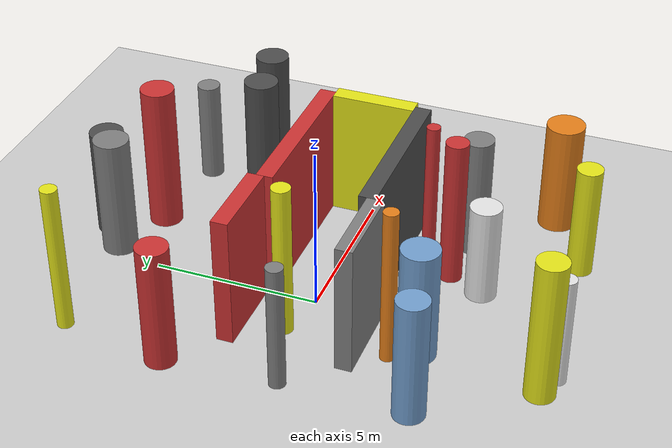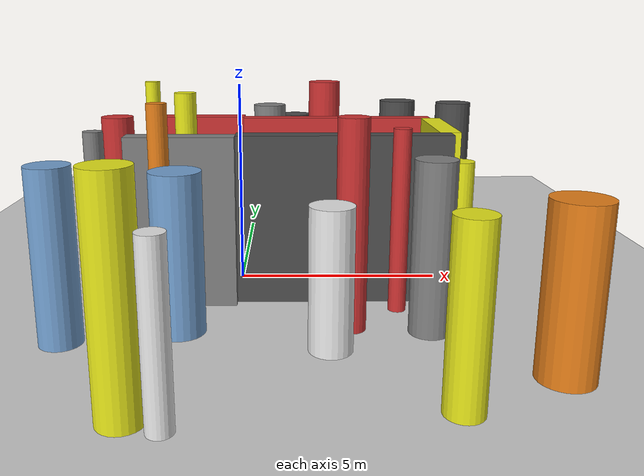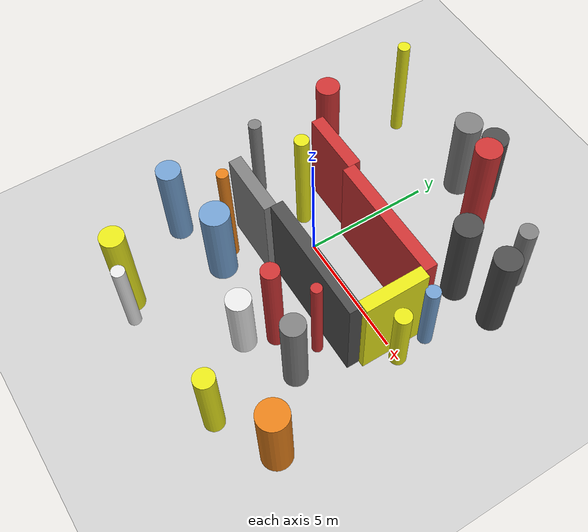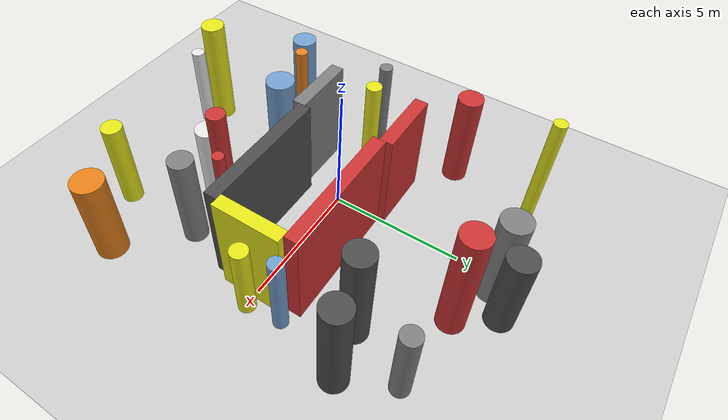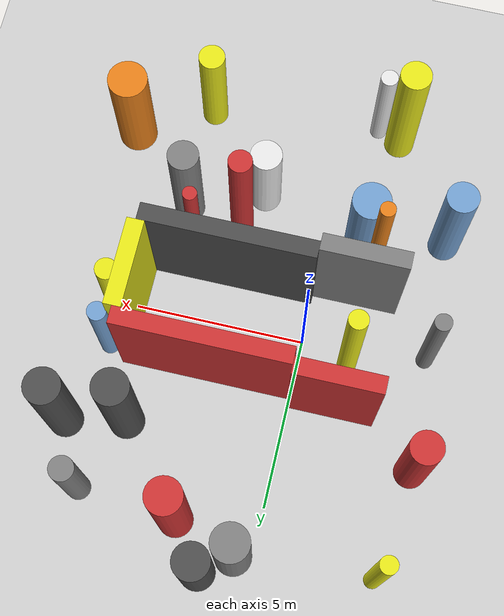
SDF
<?xml version='1.0'?>
<sdf version='1.6'>
  <world name='routeA_rl_v1__dense_recovery__rl_test__cul_de_sac_trap__000115'>
    <!-- Sun light -->
    <light name='sun' type='directional'>
      <cast_shadows>1</cast_shadows>
      <pose>0 0 10 0 0 0</pose>
      <diffuse>0.8 0.8 0.8 1</diffuse>
      <specular>0.2 0.2 0.2 1</specular>
      <attenuation>
        <range>1000</range>
        <constant>0.9</constant>
        <linear>0.01</linear>
        <quadratic>0.001</quadratic>
      </attenuation>
      <direction>-0.5 0.1 -0.9</direction>
    </light>

    <!-- Ground plane -->
    <model name='ground_plane'>
      <static>1</static>
      <link name='link'>
        <collision name='collision'>
          <geometry>
            <plane>
              <normal>0 0 1</normal>
              <size>100 100</size>
            </plane>
          </geometry>
          <surface>
            <contact>
              <collide_bitmask>65535</collide_bitmask>
              <ode/>
            </contact>
            <friction>
              <ode>
                <mu>100</mu>
                <mu2>50</mu2>
              </ode>
              <torsional><ode/></torsional>
            </friction>
            <bounce/>
          </surface>
          <max_contacts>10</max_contacts>
        </collision>
        <visual name='visual'>
          <cast_shadows>0</cast_shadows>
          <geometry>
            <plane>
              <normal>0 0 1</normal>
              <size>100 100</size>
            </plane>
          </geometry>
          <material>
            <script>
              <uri>file://media/materials/scripts/gazebo.material</uri>
              <n>Gazebo/Grey</n>
            </script>
          </material>
        </visual>
      </link>
    </model>

    <!-- Environment -->
    <magnetic_field>6e-06 2.3e-05 -4.2e-05</magnetic_field>
    <atmosphere type='adiabatic'/>
    <physics name='default_physics' default='0' type='ode'>
      <gravity>0 0 -9.8</gravity>
      <max_step_size>0.004</max_step_size>
      <real_time_factor>1</real_time_factor>
      <real_time_update_rate>250</real_time_update_rate>
    </physics>
    <scene>
      <ambient>0.4 0.4 0.4 1</ambient>
      <background>0.7 0.7 0.7 1</background>
      <shadows>1</shadows>
    </scene>
    <wind/>
    <spherical_coordinates>
      <surface_model>EARTH_WGS84</surface_model>
      <latitude_deg>0</latitude_deg>
      <longitude_deg>0</longitude_deg>
      <elevation>0</elevation>
      <heading_deg>0</heading_deg>
    </spherical_coordinates>

    <!-- ============ OBSTACLES (28) ============ -->
    <model name='trap_side_l'>
      <static>1</static>
      <link name='link'>
        <visual name='visual'>
          <geometry>
            <box>
              <size>5.0000 0.5000 4.0000</size>
            </box>
          </geometry>
          <material>
            <script>
              <n>Gazebo/DarkGrey</n>
              <uri>file://media/materials/scripts/gazebo.material</uri>
            </script>
            <ambient>0.3 0.3 0.3 1</ambient>
          </material>
        </visual>
        <collision name='collision'>
          <geometry>
            <box>
              <size>5.0000 0.5000 4.0000</size>
            </box>
          </geometry>
          <max_contacts>10</max_contacts>
          <surface>
            <contact><ode/></contact>
            <bounce/>
            <friction>
              <ode><mu>1</mu><mu2>1</mu2></ode>
              <torsional><ode/></torsional>
            </friction>
          </surface>
        </collision>
      </link>
      <pose>2.5000 -1.5000 2.0000 0 0 0.0000</pose>
    </model>

    <model name='trap_side_r'>
      <static>1</static>
      <link name='link'>
        <visual name='visual'>
          <geometry>
            <box>
              <size>5.0000 0.5000 4.0000</size>
            </box>
          </geometry>
          <material>
            <script>
              <n>Gazebo/Red</n>
              <uri>file://media/materials/scripts/gazebo.material</uri>
            </script>
            <ambient>0.8 0.2 0.2 1</ambient>
          </material>
        </visual>
        <collision name='collision'>
          <geometry>
            <box>
              <size>5.0000 0.5000 4.0000</size>
            </box>
          </geometry>
          <max_contacts>10</max_contacts>
          <surface>
            <contact><ode/></contact>
            <bounce/>
            <friction>
              <ode><mu>1</mu><mu2>1</mu2></ode>
              <torsional><ode/></torsional>
            </friction>
          </surface>
        </collision>
      </link>
      <pose>2.5000 1.5000 2.0000 0 0 0.0000</pose>
    </model>

    <model name='trap_back'>
      <static>1</static>
      <link name='link'>
        <visual name='visual'>
          <geometry>
            <box>
              <size>0.5000 2.5000 4.0000</size>
            </box>
          </geometry>
          <material>
            <script>
              <n>Gazebo/Yellow</n>
              <uri>file://media/materials/scripts/gazebo.material</uri>
            </script>
            <ambient>0.9 0.9 0.1 1</ambient>
          </material>
        </visual>
        <collision name='collision'>
          <geometry>
            <box>
              <size>0.5000 2.5000 4.0000</size>
            </box>
          </geometry>
          <max_contacts>10</max_contacts>
          <surface>
            <contact><ode/></contact>
            <bounce/>
            <friction>
              <ode><mu>1</mu><mu2>1</mu2></ode>
              <torsional><ode/></torsional>
            </friction>
          </surface>
        </collision>
      </link>
      <pose>5.0000 0.0000 2.0000 0 0 0.0000</pose>
    </model>

    <model name='trap_funnel_l'>
      <static>1</static>
      <link name='link'>
        <visual name='visual'>
          <geometry>
            <box>
              <size>2.5000 0.5000 4.0000</size>
            </box>
          </geometry>
          <material>
            <script>
              <n>Gazebo/Grey</n>
              <uri>file://media/materials/scripts/gazebo.material</uri>
            </script>
            <ambient>0.5 0.5 0.5 1</ambient>
          </material>
        </visual>
        <collision name='collision'>
          <geometry>
            <box>
              <size>2.5000 0.5000 4.0000</size>
            </box>
          </geometry>
          <max_contacts>10</max_contacts>
          <surface>
            <contact><ode/></contact>
            <bounce/>
            <friction>
              <ode><mu>1</mu><mu2>1</mu2></ode>
              <torsional><ode/></torsional>
            </friction>
          </surface>
        </collision>
      </link>
      <pose>-1.2500 -1.7500 2.0000 0 0 0.0000</pose>
    </model>

    <model name='trap_funnel_r'>
      <static>1</static>
      <link name='link'>
        <visual name='visual'>
          <geometry>
            <box>
              <size>2.5000 0.5000 4.0000</size>
            </box>
          </geometry>
          <material>
            <script>
              <n>Gazebo/Red</n>
              <uri>file://media/materials/scripts/gazebo.material</uri>
            </script>
            <ambient>0.8 0.2 0.2 1</ambient>
          </material>
        </visual>
        <collision name='collision'>
          <geometry>
            <box>
              <size>2.5000 0.5000 4.0000</size>
            </box>
          </geometry>
          <max_contacts>10</max_contacts>
          <surface>
            <contact><ode/></contact>
            <bounce/>
            <friction>
              <ode><mu>1</mu><mu2>1</mu2></ode>
              <torsional><ode/></torsional>
            </friction>
          </surface>
        </collision>
      </link>
      <pose>-1.2500 1.7500 2.0000 0 0 0.0000</pose>
    </model>

    <model name='trap_scatter_0'>
      <static>1</static>
      <link name='link'>
        <visual name='visual'>
          <geometry>
            <cylinder>
              <radius>0.3840</radius>
              <length>3.5343</length>
            </cylinder>
          </geometry>
          <material>
            <script>
              <n>Gazebo/Yellow</n>
              <uri>file://media/materials/scripts/gazebo.material</uri>
            </script>
            <ambient>0.9 0.9 0.1 1</ambient>
          </material>
        </visual>
        <collision name='collision'>
          <geometry>
            <cylinder>
              <radius>0.3840</radius>
              <length>3.5343</length>
            </cylinder>
          </geometry>
          <max_contacts>10</max_contacts>
          <surface>
            <contact><ode/></contact>
            <bounce/>
            <friction>
              <ode><mu>1</mu><mu2>1</mu2></ode>
              <torsional><ode/></torsional>
            </friction>
          </surface>
        </collision>
      </link>
      <pose>4.2374 -6.7184 1.7671 0 0 0.0000</pose>
    </model>

    <model name='trap_scatter_1'>
      <static>1</static>
      <link name='link'>
        <visual name='visual'>
          <geometry>
            <cylinder>
              <radius>0.4475</radius>
              <length>4.3854</length>
            </cylinder>
          </geometry>
          <material>
            <script>
              <n>Gazebo/Yellow</n>
              <uri>file://media/materials/scripts/gazebo.material</uri>
            </script>
            <ambient>0.9 0.9 0.1 1</ambient>
          </material>
        </visual>
        <collision name='collision'>
          <geometry>
            <cylinder>
              <radius>0.4475</radius>
              <length>4.3854</length>
            </cylinder>
          </geometry>
          <max_contacts>10</max_contacts>
          <surface>
            <contact><ode/></contact>
            <bounce/>
            <friction>
              <ode><mu>1</mu><mu2>1</mu2></ode>
              <torsional><ode/></torsional>
            </friction>
          </surface>
        </collision>
      </link>
      <pose>-1.5602 -6.9732 2.1927 0 0 0.0000</pose>
    </model>

    <model name='trap_scatter_2'>
      <static>1</static>
      <link name='link'>
        <visual name='visual'>
          <geometry>
            <cylinder>
              <radius>0.2784</radius>
              <length>4.7645</length>
            </cylinder>
          </geometry>
          <material>
            <script>
              <n>Gazebo/Yellow</n>
              <uri>file://media/materials/scripts/gazebo.material</uri>
            </script>
            <ambient>0.9 0.9 0.1 1</ambient>
          </material>
        </visual>
        <collision name='collision'>
          <geometry>
            <cylinder>
              <radius>0.2784</radius>
              <length>4.7645</length>
            </cylinder>
          </geometry>
          <max_contacts>10</max_contacts>
          <surface>
            <contact><ode/></contact>
            <bounce/>
            <friction>
              <ode><mu>1</mu><mu2>1</mu2></ode>
              <torsional><ode/></torsional>
            </friction>
          </surface>
        </collision>
      </link>
      <pose>-1.4131 0.4152 2.3823 0 0 0.0000</pose>
    </model>

    <model name='trap_scatter_4'>
      <static>1</static>
      <link name='link'>
        <visual name='visual'>
          <geometry>
            <cylinder>
              <radius>0.3502</radius>
              <length>3.2169</length>
            </cylinder>
          </geometry>
          <material>
            <script>
              <n>Gazebo/Grey</n>
              <uri>file://media/materials/scripts/gazebo.material</uri>
            </script>
            <ambient>0.5 0.5 0.5 1</ambient>
          </material>
        </visual>
        <collision name='collision'>
          <geometry>
            <cylinder>
              <radius>0.3502</radius>
              <length>3.2169</length>
            </cylinder>
          </geometry>
          <max_contacts>10</max_contacts>
          <surface>
            <contact><ode/></contact>
            <bounce/>
            <friction>
              <ode><mu>1</mu><mu2>1</mu2></ode>
              <torsional><ode/></torsional>
            </friction>
          </surface>
        </collision>
      </link>
      <pose>5.2697 5.6140 1.6085 0 0 0.0000</pose>
    </model>

    <model name='trap_scatter_5'>
      <static>1</static>
      <link name='link'>
        <visual name='visual'>
          <geometry>
            <cylinder>
              <radius>0.2538</radius>
              <length>3.4145</length>
            </cylinder>
          </geometry>
          <material>
            <script>
              <n>Gazebo/White</n>
              <uri>file://media/materials/scripts/gazebo.material</uri>
            </script>
            <ambient>0.9 0.9 0.9 1</ambient>
          </material>
        </visual>
        <collision name='collision'>
          <geometry>
            <cylinder>
              <radius>0.2538</radius>
              <length>3.4145</length>
            </cylinder>
          </geometry>
          <max_contacts>10</max_contacts>
          <surface>
            <contact><ode/></contact>
            <bounce/>
            <friction>
              <ode><mu>1</mu><mu2>1</mu2></ode>
              <torsional><ode/></torsional>
            </friction>
          </surface>
        </collision>
      </link>
      <pose>-0.8533 -7.2766 1.7072 0 0 0.0000</pose>
    </model>

    <model name='trap_scatter_6'>
      <static>1</static>
      <link name='link'>
        <visual name='visual'>
          <geometry>
            <cylinder>
              <radius>0.5788</radius>
              <length>3.4892</length>
            </cylinder>
          </geometry>
          <material>
            <script>
              <n>Gazebo/Orange</n>
              <uri>file://media/materials/scripts/gazebo.material</uri>
            </script>
            <ambient>0.9 0.5 0.1 1</ambient>
          </material>
        </visual>
        <collision name='collision'>
          <geometry>
            <cylinder>
              <radius>0.5788</radius>
              <length>3.4892</length>
            </cylinder>
          </geometry>
          <max_contacts>10</max_contacts>
          <surface>
            <contact><ode/></contact>
            <bounce/>
            <friction>
              <ode><mu>1</mu><mu2>1</mu2></ode>
              <torsional><ode/></torsional>
            </friction>
          </surface>
        </collision>
      </link>
      <pose>6.4206 -5.5102 1.7446 0 0 0.0000</pose>
    </model>

    <model name='trap_scatter_7'>
      <static>1</static>
      <link name='link'>
        <visual name='visual'>
          <geometry>
            <cylinder>
              <radius>0.4647</radius>
              <length>3.8124</length>
            </cylinder>
          </geometry>
          <material>
            <script>
              <n>Gazebo/Red</n>
              <uri>file://media/materials/scripts/gazebo.material</uri>
            </script>
            <ambient>0.8 0.2 0.2 1</ambient>
          </material>
        </visual>
        <collision name='collision'>
          <geometry>
            <cylinder>
              <radius>0.4647</radius>
              <length>3.8124</length>
            </cylinder>
          </geometry>
          <max_contacts>10</max_contacts>
          <surface>
            <contact><ode/></contact>
            <bounce/>
            <friction>
              <ode><mu>1</mu><mu2>1</mu2></ode>
              <torsional><ode/></torsional>
            </friction>
          </surface>
        </collision>
      </link>
      <pose>-3.8247 3.0679 1.9062 0 0 0.0000</pose>
    </model>

    <model name='trap_scatter_8'>
      <static>1</static>
      <link name='link'>
        <visual name='visual'>
          <geometry>
            <cylinder>
              <radius>0.2472</radius>
              <length>3.8847</length>
            </cylinder>
          </geometry>
          <material>
            <script>
              <n>Gazebo/Grey</n>
              <uri>file://media/materials/scripts/gazebo.material</uri>
            </script>
            <ambient>0.5 0.5 0.5 1</ambient>
          </material>
        </visual>
        <collision name='collision'>
          <geometry>
            <cylinder>
              <radius>0.2472</radius>
              <length>3.8847</length>
            </cylinder>
          </geometry>
          <max_contacts>10</max_contacts>
          <surface>
            <contact><ode/></contact>
            <bounce/>
            <friction>
              <ode><mu>1</mu><mu2>1</mu2></ode>
              <torsional><ode/></torsional>
            </friction>
          </surface>
        </collision>
      </link>
      <pose>-3.6211 -0.2907 1.9423 0 0 0.0000</pose>
    </model>

    <model name='trap_scatter_9'>
      <static>1</static>
      <link name='link'>
        <visual name='visual'>
          <geometry>
            <cylinder>
              <radius>0.2431</radius>
              <length>4.5736</length>
            </cylinder>
          </geometry>
          <material>
            <script>
              <n>Gazebo/Yellow</n>
              <uri>file://media/materials/scripts/gazebo.material</uri>
            </script>
            <ambient>0.9 0.9 0.1 1</ambient>
          </material>
        </visual>
        <collision name='collision'>
          <geometry>
            <cylinder>
              <radius>0.2431</radius>
              <length>4.5736</length>
            </cylinder>
          </geometry>
          <max_contacts>10</max_contacts>
          <surface>
            <contact><ode/></contact>
            <bounce/>
            <friction>
              <ode><mu>1</mu><mu2>1</mu2></ode>
              <torsional><ode/></torsional>
            </friction>
          </surface>
        </collision>
      </link>
      <pose>-3.3768 6.2601 2.2868 0 0 0.0000</pose>
    </model>

    <model name='trap_scatter_10'>
      <static>1</static>
      <link name='link'>
        <visual name='visual'>
          <geometry>
            <cylinder>
              <radius>0.2760</radius>
              <length>3.3123</length>
            </cylinder>
          </geometry>
          <material>
            <script>
              <n>Gazebo/Blue</n>
              <uri>file://media/materials/scripts/gazebo.material</uri>
            </script>
            <ambient>0.447 0.624 0.812 1</ambient>
          </material>
        </visual>
        <collision name='collision'>
          <geometry>
            <cylinder>
              <radius>0.2760</radius>
              <length>3.3123</length>
            </cylinder>
          </geometry>
          <max_contacts>10</max_contacts>
          <surface>
            <contact><ode/></contact>
            <bounce/>
            <friction>
              <ode><mu>1</mu><mu2>1</mu2></ode>
              <torsional><ode/></torsional>
            </friction>
          </surface>
        </collision>
      </link>
      <pose>5.4866 1.3100 1.6561 0 0 0.0000</pose>
    </model>

    <model name='trap_scatter_11'>
      <static>1</static>
      <link name='link'>
        <visual name='visual'>
          <geometry>
            <cylinder>
              <radius>0.4509</radius>
              <length>3.7923</length>
            </cylinder>
          </geometry>
          <material>
            <script>
              <n>Gazebo/Grey</n>
              <uri>file://media/materials/scripts/gazebo.material</uri>
            </script>
            <ambient>0.5 0.5 0.5 1</ambient>
          </material>
        </visual>
        <collision name='collision'>
          <geometry>
            <cylinder>
              <radius>0.4509</radius>
              <length>3.7923</length>
            </cylinder>
          </geometry>
          <max_contacts>10</max_contacts>
          <surface>
            <contact><ode/></contact>
            <bounce/>
            <friction>
              <ode><mu>1</mu><mu2>1</mu2></ode>
              <torsional><ode/></torsional>
            </friction>
          </surface>
        </collision>
      </link>
      <pose>4.2528 -3.4411 1.8961 0 0 0.0000</pose>
    </model>

    <model name='trap_scatter_12'>
      <static>1</static>
      <link name='link'>
        <visual name='visual'>
          <geometry>
            <cylinder>
              <radius>0.2055</radius>
              <length>4.2400</length>
            </cylinder>
          </geometry>
          <material>
            <script>
              <n>Gazebo/Red</n>
              <uri>file://media/materials/scripts/gazebo.material</uri>
            </script>
            <ambient>0.8 0.2 0.2 1</ambient>
          </material>
        </visual>
        <collision name='collision'>
          <geometry>
            <cylinder>
              <radius>0.2055</radius>
              <length>4.2400</length>
            </cylinder>
          </geometry>
          <max_contacts>10</max_contacts>
          <surface>
            <contact><ode/></contact>
            <bounce/>
            <friction>
              <ode><mu>1</mu><mu2>1</mu2></ode>
              <torsional><ode/></torsional>
            </friction>
          </surface>
        </collision>
      </link>
      <pose>3.7296 -2.2079 2.1200 0 0 0.0000</pose>
    </model>

    <model name='trap_scatter_13'>
      <static>1</static>
      <link name='link'>
        <visual name='visual'>
          <geometry>
            <cylinder>
              <radius>0.5147</radius>
              <length>3.3836</length>
            </cylinder>
          </geometry>
          <material>
            <script>
              <n>Gazebo/DarkGrey</n>
              <uri>file://media/materials/scripts/gazebo.material</uri>
            </script>
            <ambient>0.3 0.3 0.3 1</ambient>
          </material>
        </visual>
        <collision name='collision'>
          <geometry>
            <cylinder>
              <radius>0.5147</radius>
              <length>3.3836</length>
            </cylinder>
          </geometry>
          <max_contacts>10</max_contacts>
          <surface>
            <contact><ode/></contact>
            <bounce/>
            <friction>
              <ode><mu>1</mu><mu2>1</mu2></ode>
              <torsional><ode/></torsional>
            </friction>
          </surface>
        </collision>
      </link>
      <pose>1.4104 7.1658 1.6918 0 0 0.0000</pose>
    </model>

    <model name='trap_scatter_14'>
      <static>1</static>
      <link name='link'>
        <visual name='visual'>
          <geometry>
            <cylinder>
              <radius>0.5070</radius>
              <length>4.6058</length>
            </cylinder>
          </geometry>
          <material>
            <script>
              <n>Gazebo/Red</n>
              <uri>file://media/materials/scripts/gazebo.material</uri>
            </script>
            <ambient>0.8 0.2 0.2 1</ambient>
          </material>
        </visual>
        <collision name='collision'>
          <geometry>
            <cylinder>
              <radius>0.5070</radius>
              <length>4.6058</length>
            </cylinder>
          </geometry>
          <max_contacts>10</max_contacts>
          <surface>
            <contact><ode/></contact>
            <bounce/>
            <friction>
              <ode><mu>1</mu><mu2>1</mu2></ode>
              <torsional><ode/></torsional>
            </friction>
          </surface>
        </collision>
      </link>
      <pose>2.3559 5.8772 2.3029 0 0 0.0000</pose>
    </model>

    <model name='trap_scatter_15'>
      <static>1</static>
      <link name='link'>
        <visual name='visual'>
          <geometry>
            <cylinder>
              <radius>0.3192</radius>
              <length>3.0735</length>
            </cylinder>
          </geometry>
          <material>
            <script>
              <n>Gazebo/Yellow</n>
              <uri>file://media/materials/scripts/gazebo.material</uri>
            </script>
            <ambient>0.9 0.9 0.1 1</ambient>
          </material>
        </visual>
        <collision name='collision'>
          <geometry>
            <cylinder>
              <radius>0.3192</radius>
              <length>3.0735</length>
            </cylinder>
          </geometry>
          <max_contacts>10</max_contacts>
          <surface>
            <contact><ode/></contact>
            <bounce/>
            <friction>
              <ode><mu>1</mu><mu2>1</mu2></ode>
              <torsional><ode/></torsional>
            </friction>
          </surface>
        </collision>
      </link>
      <pose>5.6145 0.0141 1.5367 0 0 0.0000</pose>
    </model>

    <model name='trap_scatter_16'>
      <static>1</static>
      <link name='link'>
        <visual name='visual'>
          <geometry>
            <cylinder>
              <radius>0.4644</radius>
              <length>3.7738</length>
            </cylinder>
          </geometry>
          <material>
            <script>
              <n>Gazebo/Blue</n>
              <uri>file://media/materials/scripts/gazebo.material</uri>
            </script>
            <ambient>0.447 0.624 0.812 1</ambient>
          </material>
        </visual>
        <collision name='collision'>
          <geometry>
            <cylinder>
              <radius>0.4644</radius>
              <length>3.7738</length>
            </cylinder>
          </geometry>
          <max_contacts>10</max_contacts>
          <surface>
            <contact><ode/></contact>
            <bounce/>
            <friction>
              <ode><mu>1</mu><mu2>1</mu2></ode>
              <torsional><ode/></torsional>
            </friction>
          </surface>
        </collision>
      </link>
      <pose>-3.5151 -3.9582 1.8869 0 0 0.0000</pose>
    </model>

    <model name='trap_scatter_17'>
      <static>1</static>
      <link name='link'>
        <visual name='visual'>
          <geometry>
            <cylinder>
              <radius>0.3396</radius>
              <length>4.6296</length>
            </cylinder>
          </geometry>
          <material>
            <script>
              <n>Gazebo/Red</n>
              <uri>file://media/materials/scripts/gazebo.material</uri>
            </script>
            <ambient>0.8 0.2 0.2 1</ambient>
          </material>
        </visual>
        <collision name='collision'>
          <geometry>
            <cylinder>
              <radius>0.3396</radius>
              <length>4.6296</length>
            </cylinder>
          </geometry>
          <max_contacts>10</max_contacts>
          <surface>
            <contact><ode/></contact>
            <bounce/>
            <friction>
              <ode><mu>1</mu><mu2>1</mu2></ode>
              <torsional><ode/></torsional>
            </friction>
          </surface>
        </collision>
      </link>
      <pose>2.5689 -3.2496 2.3148 0 0 0.0000</pose>
    </model>

    <model name='trap_scatter_18'>
      <static>1</static>
      <link name='link'>
        <visual name='visual'>
          <geometry>
            <cylinder>
              <radius>0.5563</radius>
              <length>3.5397</length>
            </cylinder>
          </geometry>
          <material>
            <script>
              <n>Gazebo/Blue</n>
              <uri>file://media/materials/scripts/gazebo.material</uri>
            </script>
            <ambient>0.447 0.624 0.812 1</ambient>
          </material>
        </visual>
        <collision name='collision'>
          <geometry>
            <cylinder>
              <radius>0.5563</radius>
              <length>3.5397</length>
            </cylinder>
          </geometry>
          <max_contacts>10</max_contacts>
          <surface>
            <contact><ode/></contact>
            <bounce/>
            <friction>
              <ode><mu>1</mu><mu2>1</mu2></ode>
              <torsional><ode/></torsional>
            </friction>
          </surface>
        </collision>
      </link>
      <pose>-1.1104 -3.3981 1.7699 0 0 0.0000</pose>
    </model>

    <model name='trap_scatter_20'>
      <static>1</static>
      <link name='link'>
        <visual name='visual'>
          <geometry>
            <cylinder>
              <radius>0.5117</radius>
              <length>4.1472</length>
            </cylinder>
          </geometry>
          <material>
            <script>
              <n>Gazebo/DarkGrey</n>
              <uri>file://media/materials/scripts/gazebo.material</uri>
            </script>
            <ambient>0.3 0.3 0.3 1</ambient>
          </material>
        </visual>
        <collision name='collision'>
          <geometry>
            <cylinder>
              <radius>0.5117</radius>
              <length>4.1472</length>
            </cylinder>
          </geometry>
          <max_contacts>10</max_contacts>
          <surface>
            <contact><ode/></contact>
            <bounce/>
            <friction>
              <ode><mu>1</mu><mu2>1</mu2></ode>
              <torsional><ode/></torsional>
            </friction>
          </surface>
        </collision>
      </link>
      <pose>6.1498 3.7940 2.0736 0 0 0.0000</pose>
    </model>

    <model name='trap_scatter_21'>
      <static>1</static>
      <link name='link'>
        <visual name='visual'>
          <geometry>
            <cylinder>
              <radius>0.2205</radius>
              <length>4.8428</length>
            </cylinder>
          </geometry>
          <material>
            <script>
              <n>Gazebo/Orange</n>
              <uri>file://media/materials/scripts/gazebo.material</uri>
            </script>
            <ambient>0.9 0.5 0.1 1</ambient>
          </material>
        </visual>
        <collision name='collision'>
          <geometry>
            <cylinder>
              <radius>0.2205</radius>
              <length>4.8428</length>
            </cylinder>
          </geometry>
          <max_contacts>10</max_contacts>
          <surface>
            <contact><ode/></contact>
            <bounce/>
            <friction>
              <ode><mu>1</mu><mu2>1</mu2></ode>
              <torsional><ode/></torsional>
            </friction>
          </surface>
        </collision>
      </link>
      <pose>-1.5583 -2.7017 2.4214 0 0 0.0000</pose>
    </model>

    <model name='trap_scatter_22'>
      <static>1</static>
      <link name='link'>
        <visual name='visual'>
          <geometry>
            <cylinder>
              <radius>0.5312</radius>
              <length>3.7771</length>
            </cylinder>
          </geometry>
          <material>
            <script>
              <n>Gazebo/Grey</n>
              <uri>file://media/materials/scripts/gazebo.material</uri>
            </script>
            <ambient>0.5 0.5 0.5 1</ambient>
          </material>
        </visual>
        <collision name='collision'>
          <geometry>
            <cylinder>
              <radius>0.5312</radius>
              <length>3.7771</length>
            </cylinder>
          </geometry>
          <max_contacts>10</max_contacts>
          <surface>
            <contact><ode/></contact>
            <bounce/>
            <friction>
              <ode><mu>1</mu><mu2>1</mu2></ode>
              <torsional><ode/></torsional>
            </friction>
          </surface>
        </collision>
      </link>
      <pose>0.5329 6.5291 1.8885 0 0 0.0000</pose>
    </model>

    <model name='trap_scatter_23'>
      <static>1</static>
      <link name='link'>
        <visual name='visual'>
          <geometry>
            <cylinder>
              <radius>0.5183</radius>
              <length>4.2453</length>
            </cylinder>
          </geometry>
          <material>
            <script>
              <n>Gazebo/DarkGrey</n>
              <uri>file://media/materials/scripts/gazebo.material</uri>
            </script>
            <ambient>0.3 0.3 0.3 1</ambient>
          </material>
        </visual>
        <collision name='collision'>
          <geometry>
            <cylinder>
              <radius>0.5183</radius>
              <length>4.2453</length>
            </cylinder>
          </geometry>
          <max_contacts>10</max_contacts>
          <surface>
            <contact><ode/></contact>
            <bounce/>
            <friction>
              <ode><mu>1</mu><mu2>1</mu2></ode>
              <torsional><ode/></torsional>
            </friction>
          </surface>
        </collision>
      </link>
      <pose>4.4163 3.4431 2.1227 0 0 0.0000</pose>
    </model>

    <model name='trap_scatter_24'>
      <static>1</static>
      <link name='link'>
        <visual name='visual'>
          <geometry>
            <cylinder>
              <radius>0.4651</radius>
              <length>3.0443</length>
            </cylinder>
          </geometry>
          <material>
            <script>
              <n>Gazebo/White</n>
              <uri>file://media/materials/scripts/gazebo.material</uri>
            </script>
            <ambient>0.9 0.9 0.9 1</ambient>
          </material>
        </visual>
        <collision name='collision'>
          <geometry>
            <cylinder>
              <radius>0.4651</radius>
              <length>3.0443</length>
            </cylinder>
          </geometry>
          <max_contacts>10</max_contacts>
          <surface>
            <contact><ode/></contact>
            <bounce/>
            <friction>
              <ode><mu>1</mu><mu2>1</mu2></ode>
              <torsional><ode/></torsional>
            </friction>
          </surface>
        </collision>
      </link>
      <pose>2.0832 -4.3043 1.5222 0 0 0.0000</pose>
    </model>

    <!-- GUI camera -->
    <gui fullscreen='0'>
      <camera name='user_camera'>
        <pose>-15 0 18 0 0.85 0.15</pose>
        <view_controller>orbit</view_controller>
        <projection_type>perspective</projection_type>
      </camera>
    </gui>
  </world>
</sdf>
